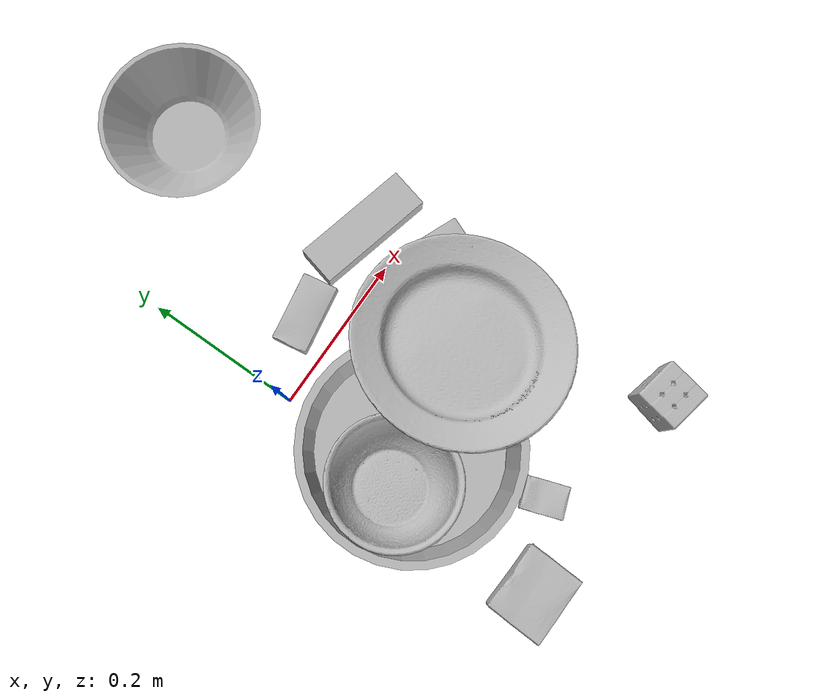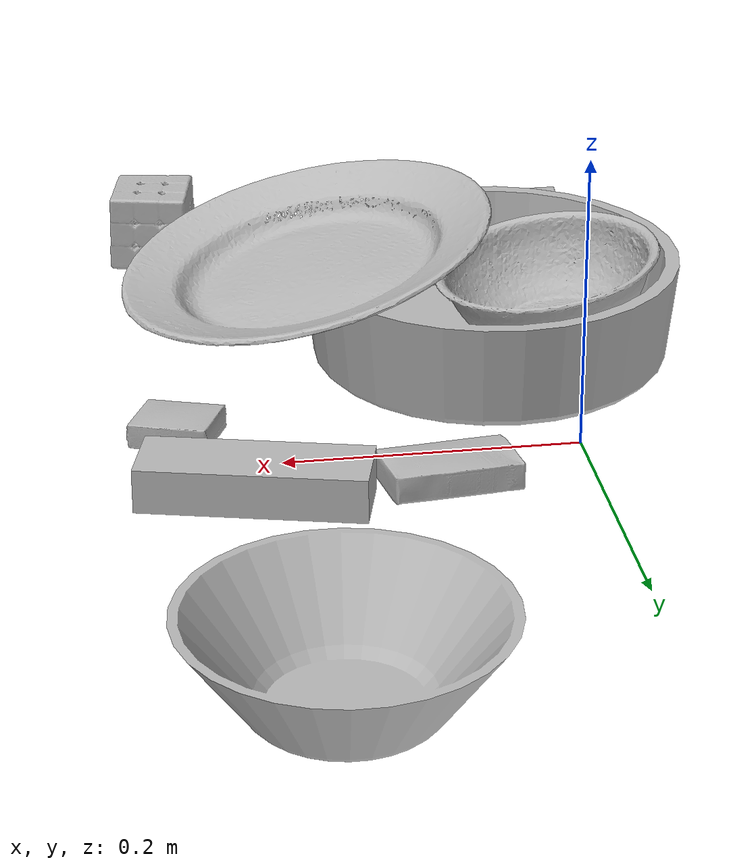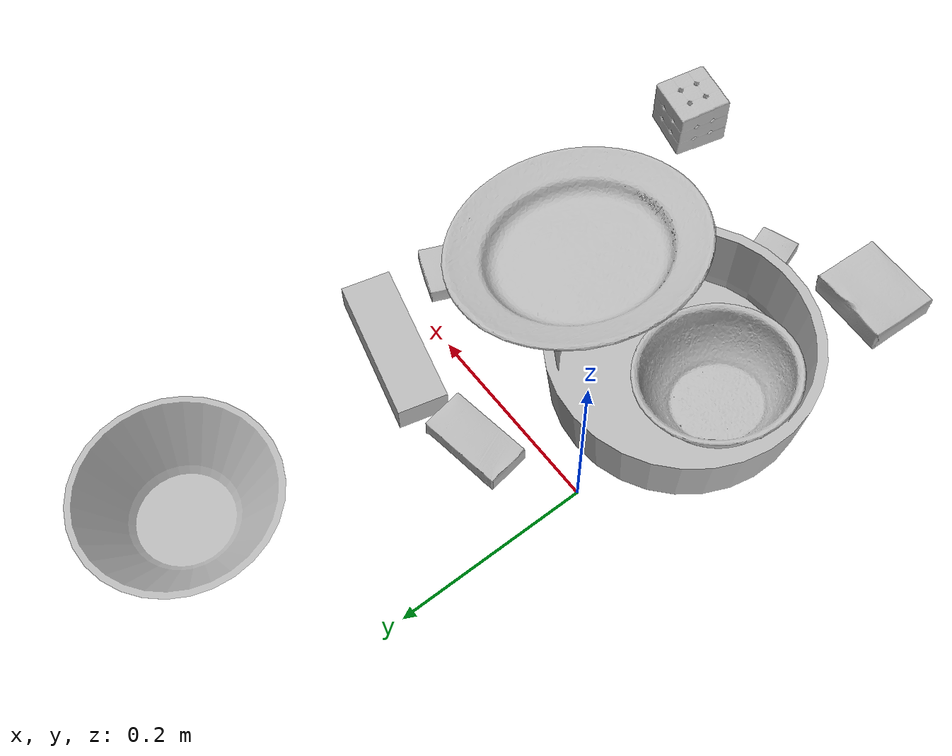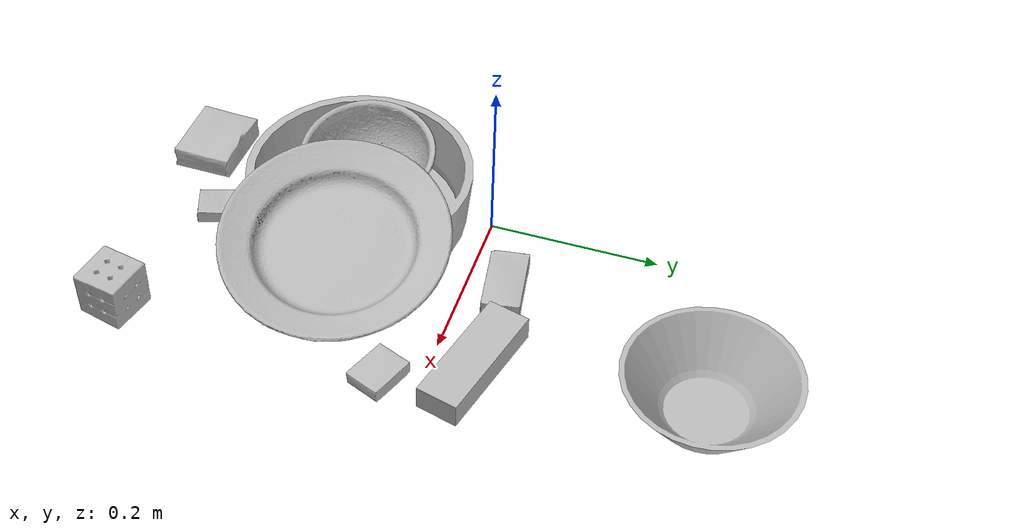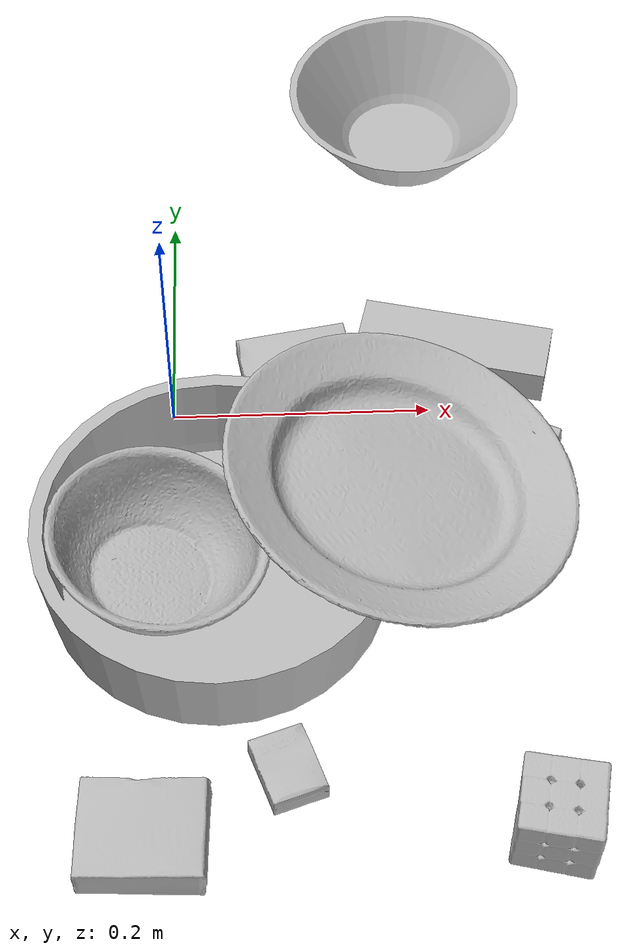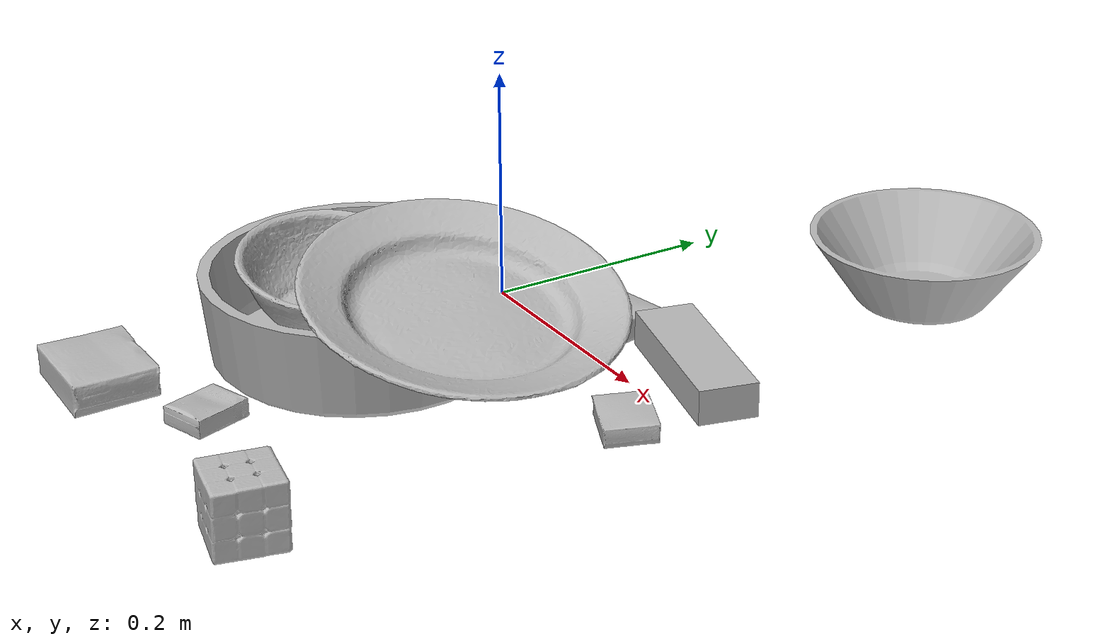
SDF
<sdf version="1.4">
  <world name="default">
    <light name="light1" type="point">
      <pose>0 0 1 0 0 0</pose>
      <diffuse>3 3 3 1</diffuse>
      <specular>3 3 3 1</specular>
    </light>
    <light name="light2" type="point">
      <pose>0 0.5 2 0 0 0</pose>
      <diffuse>1 1 1 1</diffuse>
      <specular>1 1 1 1</specular>
    </light>
    <light name="light3" type="point">
      <pose>0 0.5 2 0 0 0</pose>
      <diffuse>3 3 3 1</diffuse>
      <specular>3 3 3 1</specular>
    </light>
    <scene>
      <ambient>0.7 0.7 0.7</ambient>
    </scene>
    <model name="box1">
      <link name="link_box1">
        <collision name="default">
          <geometry>
            <mesh>
              <uri>model://sugar_box/collision_meshes/collision.obj</uri>
              <scale>0.5 0.5 0.5</scale>
            </mesh>
          </geometry>
          <surface>
            <friction>
              <ode>
                <mu>0.5</mu>
                <mu2>0.5</mu2>
              </ode>
            </friction>
          <contact>
        <ode>
            <max_vel>0</max_vel>
            <min_depth>0.0001</min_depth>
            <kp>1e8</kp>
        </ode>
    </contact></surface>
        </collision>
        <visual name="default">
          <geometry>
            <mesh>
              <uri>model://sugar_box/visual_meshes/visual.dae</uri>
              <scale>0.5 0.5 0.5</scale>
            </mesh>
          </geometry>
        </visual>
        <inertial>
          <mass>0.05968111753463745</mass>
          <pose>0.0005171863595023751 1.924554817378521e-05 -0.00018182402709499002 -0.00040462627153530444 0.0010506635220302928 0.002615378323275012</pose>
          <inertia>
            <ixx>1.2431535e-05</ixx>
            <iyy>4.0181283e-05</iyy>
            <izz>4.8101785e-05</izz>
            <ixy>0</ixy>
            <ixz>0</ixz>
            <iyz>0</iyz>
          </inertia>
        </inertial>
      </link>
      <pose>0.09635595977306366 0.045945923775434494 0.011399305425584316 0.0007745755831379773 -0.02343302733644595 0.1552811767390813</pose>
    </model>
    <model name="box11">
      <link name="link_box11">
        <collision name="default">
          <geometry>
            <mesh>
              <uri>model://cracker_box/collision_meshes/collision.obj</uri>
              <scale>0.25 0.25 0.25</scale>
            </mesh>
          </geometry>
          <surface>
            <friction>
              <ode>
                <mu>0.5</mu>
                <mu2>0.5</mu2>
              </ode>
            </friction>
          <contact>
        <ode>
            <max_vel>0</max_vel>
            <min_depth>0.0001</min_depth>
            <kp>1e8</kp>
        </ode>
    </contact></surface>
        </collision>
        <visual name="default">
          <geometry>
            <mesh>
              <uri>model://cracker_box/visual_meshes/visual.dae</uri>
              <scale>0.25 0.25 0.25</scale>
            </mesh>
          </geometry>
        </visual>
        <inertial>
          <mass>0.04741516709327698</mass>
          <pose>0.0002366035187151283 6.358561950037256e-05 -0.0004257383698131889 -0.00031620780351981393 -0.01110649053153066 0.0025467950031323855</pose>
          <inertia>
            <ixx>7.537689e-06</ixx>
            <iyy>1.2446206e-05</iyy>
            <izz>1.7761875e-05</izz>
            <ixy>0</ixy>
            <ixz>0</ixz>
            <iyz>0</iyz>
          </inertia>
        </inertial>
      </link>
      <pose>0.08022268116474152 -0.3136868178844452 0.009120452217757702 -0.011788006596615528 -0.007367159748672026 -1.2442201989151576</pose>
    </model>
    <model name="box2">
      <link name="link_box2">
        <collision name="default">
          <geometry>
            <mesh>
              <uri>model://jenga/collision_meshes/collision.obj</uri>
              <scale>1.0 1.0 1.0</scale>
            </mesh>
          </geometry>
          <surface>
            <friction>
              <ode>
                <mu>0.5</mu>
                <mu2>0.5</mu2>
              </ode>
            </friction>
          <contact>
        <ode>
            <max_vel>0</max_vel>
            <min_depth>0.0001</min_depth>
            <kp>1e8</kp>
        </ode>
    </contact></surface>
        </collision>
        <visual name="default">
          <geometry>
            <mesh>
              <uri>model://jenga/visual_meshes/visual.dae</uri>
              <scale>1.0 1.0 1.0</scale>
            </mesh>
          </geometry>
        </visual>
        <inertial>
          <mass>0.17569443583488464</mass>
          <pose>-2.502855807051674e-07 -0.00010250010382151231 -4.0923401684267446e-05 0.0 -7.342153480750062e-07 0.0</pose>
          <inertia>
            <ixx>4.8618913e-05</ixx>
            <iyy>0.00032944046</iyy>
            <izz>0.0003517057</izz>
            <ixy>0</ixy>
            <ixz>0</ixz>
            <iyz>0</iyz>
          </inertia>
        </inertial>
      </link>
      <pose>0.2224021553993225 0.04858125001192093 0.014999995939433575 5.005855690203127e-09 4.283536373031524e-09 2.8972924834198754</pose>
    </model>
    <model name="box21">
      <link name="link_box21">
        <collision name="default">
          <geometry>
            <mesh>
              <uri>model://rubiks_cube/collision_meshes/collision.obj</uri>
              <scale>1.0 1.0 1.0</scale>
            </mesh>
          </geometry>
          <surface>
            <friction>
              <ode>
                <mu>0.5</mu>
                <mu2>0.5</mu2>
              </ode>
            </friction>
          <contact>
        <ode>
            <max_vel>0</max_vel>
            <min_depth>0.0001</min_depth>
            <kp>1e8</kp>
        </ode>
    </contact></surface>
        </collision>
        <visual name="default">
          <geometry>
            <mesh>
              <uri>model://rubiks_cube/visual_meshes/visual.dae</uri>
              <scale>1.0 1.0 1.0</scale>
            </mesh>
          </geometry>
        </visual>
        <inertial>
          <mass>0.16427944600582123</mass>
          <pose>2.6721041649580002e-05 5.2569666877388954e-05 -7.2643156272533815e-06 -0.05467299197426534 -0.0981400693449792 -0.034455479534688374</pose>
          <inertia>
            <ixx>9.0775415e-05</ixx>
            <iyy>9.0352085e-05</iyy>
            <izz>9.152764e-05</izz>
            <ixy>0</ixy>
            <ixz>0</ixz>
            <iyz>0</iyz>
          </inertia>
        </inertial>
      </link>
      <pose>0.2588692605495453 -0.3643425703048706 0.028678998351097107 -2.169335433665502e-06 3.9075165531850037e-07 1.3653029449605656</pose>
    </model>
    <model name="box3">
      <link name="link_box3">
        <collision name="default">
          <geometry>
            <mesh>
              <uri>model://gelatin_box/collision_meshes/collision.obj</uri>
              <scale>1.0 1.0 1.0</scale>
            </mesh>
          </geometry>
          <surface>
            <friction>
              <ode>
                <mu>0.5</mu>
                <mu2>0.5</mu2>
              </ode>
            </friction>
          <contact>
        <ode>
            <max_vel>0</max_vel>
            <min_depth>0.0001</min_depth>
            <kp>1e8</kp>
        </ode>
    </contact></surface>
        </collision>
        <visual name="default">
          <geometry>
            <mesh>
              <uri>model://gelatin_box/visual_meshes/visual.dae</uri>
              <scale>1.0 1.0 1.0</scale>
            </mesh>
          </geometry>
        </visual>
        <inertial>
          <mass>0.21197354793548584</mass>
          <pose>0.0004319618456065655 0.00011156872642459348 -0.0003640321083366871 -0.0010503719594585892 -0.004755818227500045 0.016440553882781303</pose>
          <inertia>
            <ixx>0.00014963602</ixx>
            <iyy>0.00010688423</iyy>
            <izz>0.00022777937</izz>
            <ixy>0</ixy>
            <ixz>0</ixz>
            <iyz>0</iyz>
          </inertia>
        </inertial>
      </link>
      <pose>-0.017792833968997 -0.3622714579105377 0.015168311074376106 0.005597433505885132 -0.007304492405501959 1.5209459764147635</pose>
    </model>
    <model name="box31">
      <link name="link_box31">
        <collision name="default">
          <geometry>
            <mesh>
              <uri>model://pudding_box/collision_meshes/collision.obj</uri>
              <scale>0.5 0.5 0.5</scale>
            </mesh>
          </geometry>
          <surface>
            <friction>
              <ode>
                <mu>0.5</mu>
                <mu2>0.5</mu2>
              </ode>
            </friction>
          <contact>
        <ode>
            <max_vel>0</max_vel>
            <min_depth>0.0001</min_depth>
            <kp>1e8</kp>
        </ode>
    </contact></surface>
        </collision>
        <visual name="default">
          <geometry>
            <mesh>
              <uri>model://pudding_box/visual_meshes/visual.dae</uri>
              <scale>0.5 0.5 0.5</scale>
            </mesh>
          </geometry>
        </visual>
        <inertial>
          <mass>0.056796859949827194</mass>
          <pose>0.00024474109522998333 0.0004033942532259971 -0.0002594413817860186 0.005213102251005844 -0.00660379641961884 0.02007983447872704</pose>
          <inertia>
            <ixx>1.605148e-05</ixx>
            <iyy>1.0799551e-05</iyy>
            <izz>2.3704206e-05</izz>
            <ixy>0</ixy>
            <ixz>0</ixz>
            <iyz>0</iyz>
          </inertia>
        </inertial>
      </link>
      <pose>0.26549074053764343 -0.045583244413137436 0.009862910024821758 0.022348566321759848 -0.011391446292796712 1.1732242420430463</pose>
    </model>
    <model name="plate1">
      <link name="link_plate1">
        <collision name="default">
          <geometry>
            <mesh>
              <uri>model://pan_tefal/collision_meshes/collision.obj</uri>
              <scale>1.0 1.0 1.0</scale>
            </mesh>
          </geometry>
          <surface>
            <friction>
              <ode>
                <mu>0.5</mu>
                <mu2>0.5</mu2>
              </ode>
            </friction>
          <contact>
        <ode>
            <max_vel>0</max_vel>
            <min_depth>0.0001</min_depth>
            <kp>1e8</kp>
        </ode>
    </contact></surface>
        </collision>
        <visual name="default">
          <geometry>
            <mesh>
              <uri>model://pan_tefal/visual_meshes/visual.dae</uri>
              <scale>1.0 1.0 1.0</scale>
            </mesh>
          </geometry>
        </visual>
        <inertial>
          <mass>1.4752264022827148</mass>
          <pose>-0.0001800210156943649 3.278951771790162e-05 -0.008514936082065105 0.0008190241607511121 -0.0003301478392365544 -0.33184922825406304</pose>
          <inertia>
            <ixx>0.010183416</ixx>
            <iyy>0.01024907</iyy>
            <izz>0.018745707</izz>
            <ixy>0</ixy>
            <ixz>0</ixz>
            <iyz>0</iyz>
          </inertia>
        </inertial>
      </link>
      <pose>0.034441448748111725 -0.1521179974079132 0.038050003349781036 -3.0182038148103126e-08 -4.608348156846388e-08 -2.4129788606998486</pose>
    </model>
    <model name="bowl1">
      <link name="link_bowl1">
        <collision name="default">
          <geometry>
            <mesh>
              <uri>model://bowl/collision_meshes/collision.obj</uri>
              <scale>1.0 1.0 1.0</scale>
            </mesh>
          </geometry>
          <surface>
            <friction>
              <ode>
                <mu>0.5</mu>
                <mu2>0.5</mu2>
              </ode>
            </friction>
          <contact>
        <ode>
            <max_vel>0</max_vel>
            <min_depth>0.0001</min_depth>
            <kp>1e8</kp>
        </ode>
    </contact></surface>
        </collision>
        <visual name="default">
          <geometry>
            <mesh>
              <uri>model://bowl/visual_meshes/visual.dae</uri>
              <scale>1.0 1.0 1.0</scale>
            </mesh>
          </geometry>
        </visual>
        <inertial>
          <mass>0.13335108757019043</mass>
          <pose>0.00020445126574486494 -0.0010302079608663917 -0.0008042646804824471 -0.01576397865263616 0.014546905041115984 0.7140477796865206</pose>
          <inertia>
            <ixx>0.000306318</ixx>
            <iyy>0.00029947367</iyy>
            <izz>0.00051533245</izz>
            <ixy>0</ixy>
            <ixz>0</ixz>
            <iyz>0</iyz>
          </inertia>
        </inertial>
      </link>
      <pose>-0.01049924548715353 -0.15798339247703552 0.04126988351345062 -0.13584008334272182 0.06435485246371657 -1.061435493081491</pose>
    </model>
    <model name="plate2">
      <link name="link_plate2">
        <collision name="default">
          <geometry>
            <mesh>
              <uri>model://plate/collision_meshes/collision.obj</uri>
              <scale>1.0 1.0 1.0</scale>
            </mesh>
          </geometry>
          <surface>
            <friction>
              <ode>
                <mu>0.5</mu>
                <mu2>0.5</mu2>
              </ode>
            </friction>
          <contact>
        <ode>
            <max_vel>0</max_vel>
            <min_depth>0.0001</min_depth>
            <kp>1e8</kp>
        </ode>
    </contact></surface>
        </collision>
        <visual name="default">
          <geometry>
            <mesh>
              <uri>model://plate/visual_meshes/visual.dae</uri>
              <scale>1.0 1.0 1.0</scale>
            </mesh>
          </geometry>
        </visual>
        <inertial>
          <mass>0.1753290891647339</mass>
          <pose>-0.0006044620531611145 0.0002782598021440208 -0.0010561987292021513 0.0022188066246853514 -0.003225466953145419 0.45260347799947726</pose>
          <inertia>
            <ixx>0.00082019315</ixx>
            <iyy>0.00081234827</iyy>
            <izz>0.0016041752</izz>
            <ixy>0</ixy>
            <ixz>0</ixz>
            <iyz>0</iyz>
          </inertia>
        </inertial>
      </link>
      <pose>0.16570623219013214 -0.13111566007137299 0.08794523030519485 0.13532291088718745 -0.17909498479833694 2.6068178118277734</pose>
    </model>
    <model name="bowl2">
      <link name="link_bowl2">
        <collision name="default">
          <geometry>
            <mesh>
              <uri>model://bowl_a/collision_meshes/collision.obj</uri>
              <scale>1.0 1.0 1.0</scale>
            </mesh>
          </geometry>
          <surface>
            <friction>
              <ode>
                <mu>0.5</mu>
                <mu2>0.5</mu2>
              </ode>
            </friction>
          <contact>
        <ode>
            <max_vel>0</max_vel>
            <min_depth>0.0001</min_depth>
            <kp>1e8</kp>
        </ode>
    </contact></surface>
        </collision>
        <visual name="default">
          <geometry>
            <mesh>
              <uri>model://bowl_a/visual_meshes/visual.dae</uri>
              <scale>1.0 1.0 1.0</scale>
            </mesh>
          </geometry>
        </visual>
        <inertial>
          <mass>0.4813200831413269</mass>
          <pose>0.0002786751138046384 4.731064836960286e-05 -0.0013765294570475817 -0.0009805320964546374 -0.0010938264681851768 -0.19124047933057892</pose>
          <inertia>
            <ixx>0.0013703406</ixx>
            <iyy>0.0013787533</iyy>
            <izz>0.0024372027</izz>
            <ixy>0</ixy>
            <ixz>0</ixz>
            <iyz>0</iyz>
          </inertia>
        </inertial>
      </link>
      <pose>0.19795888662338257 0.3014935851097107 0.030383005738258362 -1.6178177893677875e-08 1.5132531552261898e-08 2.514781039403496</pose>
    </model>
  <physics type="ode">
      <max_contacts>50</max_contacts>
      <ode>
        <solver>
          <type>quick</type>
          <iters>75</iters>
        </solver>
        <constraints>
          <contact_max_correcting_vel>0</contact_max_correcting_vel>
          <contact_surface_layer>0</contact_surface_layer>
        </constraints>
      </ode>
    </physics></world>
</sdf>
